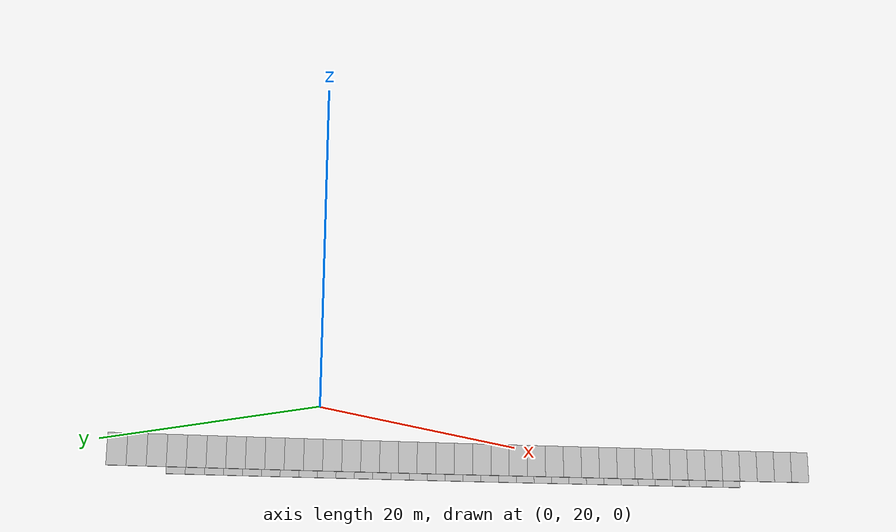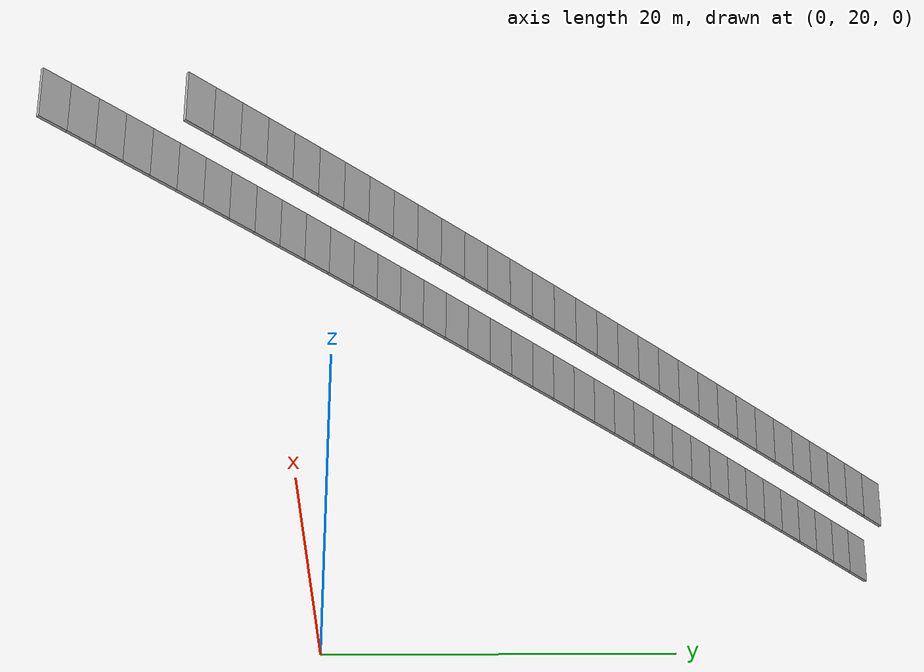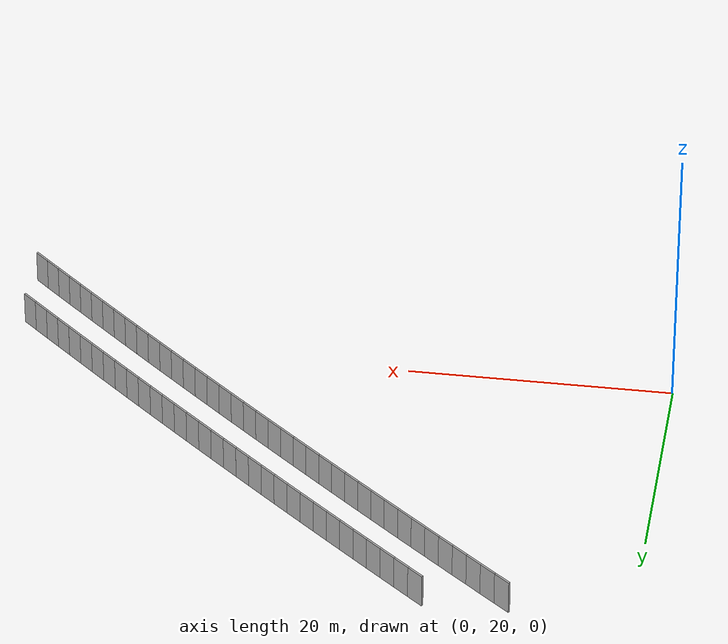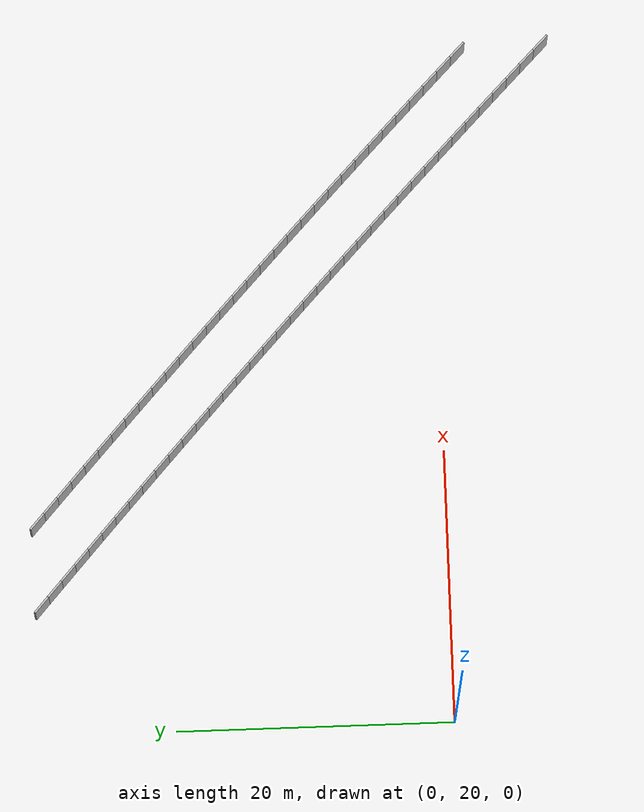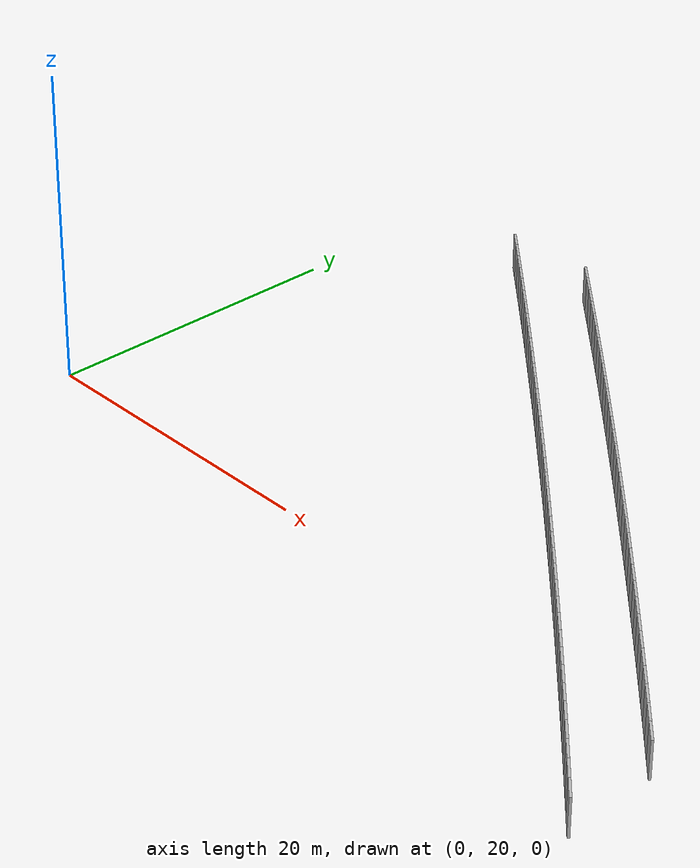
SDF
<?xml version="1.0" ?>
<sdf version="1.6">
  <model name="sps_3941">
    <pose frame="">0 0 0 0 -0 0</pose>
    <static>1</static>
    <self_collide>0</self_collide>
    <allow_auto_disable>0</allow_auto_disable>
    <link name="Wall10425">
      <kinematic>0</kinematic>
      <gravity>1</gravity>
      <self_collide>0</self_collide>
      <collision name="collision">
        <geometry>
          <box>
            <size>1.49648 0.15 2.5</size>
          </box>
        </geometry>
        <pose frame="">0 0 0 0 -0 0</pose>
      </collision>
      <visual name="visual">
        <geometry>
          <box>
            <size>1.49648 0.15 2.5</size>
          </box>
        </geometry>
        <pose frame="">0 0 0 0 -0 0</pose>
        <cast_shadows>1</cast_shadows>
        <transparency>0.0</transparency>
      </visual>
      <pose frame="">49.8541 11.8337 1.25 0 -0 2.36762</pose>
    </link>
    <link name="Wall10426">
      <kinematic>0</kinematic>
      <gravity>1</gravity>
      <self_collide>0</self_collide>
      <collision name="collision">
        <geometry>
          <box>
            <size>1.49639 0.15 2.5</size>
          </box>
        </geometry>
        <pose frame="">0 0 0 0 -0 0</pose>
      </collision>
      <visual name="visual">
        <geometry>
          <box>
            <size>1.49639 0.15 2.5</size>
          </box>
        </geometry>
        <pose frame="">0 0 0 0 -0 0</pose>
        <cast_shadows>1</cast_shadows>
        <transparency>0.0</transparency>
      </visual>
      <pose frame="">48.783 12.8787 1.25 0 -0 2.36943</pose>
    </link>
    <link name="Wall10427">
      <kinematic>0</kinematic>
      <gravity>1</gravity>
      <self_collide>0</self_collide>
      <collision name="collision">
        <geometry>
          <box>
            <size>1.49651 0.15 2.5</size>
          </box>
        </geometry>
        <pose frame="">0 0 0 0 -0 0</pose>
      </collision>
      <visual name="visual">
        <geometry>
          <box>
            <size>1.49651 0.15 2.5</size>
          </box>
        </geometry>
        <pose frame="">0 0 0 0 -0 0</pose>
        <cast_shadows>1</cast_shadows>
        <transparency>0.0</transparency>
      </visual>
      <pose frame="">47.7101 13.9219 1.25 0 -0 2.37105</pose>
    </link>
    <link name="Wall10428">
      <kinematic>0</kinematic>
      <gravity>1</gravity>
      <self_collide>0</self_collide>
      <collision name="collision">
        <geometry>
          <box>
            <size>1.49659 0.15 2.5</size>
          </box>
        </geometry>
        <pose frame="">0 0 0 0 -0 0</pose>
      </collision>
      <visual name="visual">
        <geometry>
          <box>
            <size>1.49659 0.15 2.5</size>
          </box>
        </geometry>
        <pose frame="">0 0 0 0 -0 0</pose>
        <cast_shadows>1</cast_shadows>
        <transparency>0.0</transparency>
      </visual>
      <pose frame="">46.6356 14.9635 1.25 0 -0 2.37252</pose>
    </link>
    <link name="Wall10429">
      <kinematic>0</kinematic>
      <gravity>1</gravity>
      <self_collide>0</self_collide>
      <collision name="collision">
        <geometry>
          <box>
            <size>1.4965 0.15 2.5</size>
          </box>
        </geometry>
        <pose frame="">0 0 0 0 -0 0</pose>
      </collision>
      <visual name="visual">
        <geometry>
          <box>
            <size>1.4965 0.15 2.5</size>
          </box>
        </geometry>
        <pose frame="">0 0 0 0 -0 0</pose>
        <cast_shadows>1</cast_shadows>
        <transparency>0.0</transparency>
      </visual>
      <pose frame="">45.5593 16.0034 1.25 0 -0 2.37416</pose>
    </link>
    <link name="Wall10430">
      <kinematic>0</kinematic>
      <gravity>1</gravity>
      <self_collide>0</self_collide>
      <collision name="collision">
        <geometry>
          <box>
            <size>1.4965 0.15 2.5</size>
          </box>
        </geometry>
        <pose frame="">0 0 0 0 -0 0</pose>
      </collision>
      <visual name="visual">
        <geometry>
          <box>
            <size>1.4965 0.15 2.5</size>
          </box>
        </geometry>
        <pose frame="">0 0 0 0 -0 0</pose>
        <cast_shadows>1</cast_shadows>
        <transparency>0.0</transparency>
      </visual>
      <pose frame="">44.4814 17.0415 1.25 0 -0 2.37586</pose>
    </link>
    <link name="Wall10431">
      <kinematic>0</kinematic>
      <gravity>1</gravity>
      <self_collide>0</self_collide>
      <collision name="collision">
        <geometry>
          <box>
            <size>1.49642 0.15 2.5</size>
          </box>
        </geometry>
        <pose frame="">0 0 0 0 -0 0</pose>
      </collision>
      <visual name="visual">
        <geometry>
          <box>
            <size>1.49642 0.15 2.5</size>
          </box>
        </geometry>
        <pose frame="">0 0 0 0 -0 0</pose>
        <cast_shadows>1</cast_shadows>
        <transparency>0.0</transparency>
      </visual>
      <pose frame="">43.4018 18.0778 1.25 0 -0 2.37745</pose>
    </link>
    <link name="Wall10432">
      <kinematic>0</kinematic>
      <gravity>1</gravity>
      <self_collide>0</self_collide>
      <collision name="collision">
        <geometry>
          <box>
            <size>1.49647 0.15 2.5</size>
          </box>
        </geometry>
        <pose frame="">0 0 0 0 -0 0</pose>
      </collision>
      <visual name="visual">
        <geometry>
          <box>
            <size>1.49647 0.15 2.5</size>
          </box>
        </geometry>
        <pose frame="">0 0 0 0 -0 0</pose>
        <cast_shadows>1</cast_shadows>
        <transparency>0.0</transparency>
      </visual>
      <pose frame="">42.3208 19.1125 1.25 0 -0 2.37878</pose>
    </link>
    <link name="Wall10433">
      <kinematic>0</kinematic>
      <gravity>1</gravity>
      <self_collide>0</self_collide>
      <collision name="collision">
        <geometry>
          <box>
            <size>1.49644 0.15 2.5</size>
          </box>
        </geometry>
        <pose frame="">0 0 0 0 -0 0</pose>
      </collision>
      <visual name="visual">
        <geometry>
          <box>
            <size>1.49644 0.15 2.5</size>
          </box>
        </geometry>
        <pose frame="">0 0 0 0 -0 0</pose>
        <cast_shadows>1</cast_shadows>
        <transparency>0.0</transparency>
      </visual>
      <pose frame="">41.2381 20.1455 1.25 0 -0 2.38057</pose>
    </link>
    <link name="Wall10434">
      <kinematic>0</kinematic>
      <gravity>1</gravity>
      <self_collide>0</self_collide>
      <collision name="collision">
        <geometry>
          <box>
            <size>1.49672 0.15 2.5</size>
          </box>
        </geometry>
        <pose frame="">0 0 0 0 -0 0</pose>
      </collision>
      <visual name="visual">
        <geometry>
          <box>
            <size>1.49672 0.15 2.5</size>
          </box>
        </geometry>
        <pose frame="">0 0 0 0 -0 0</pose>
        <cast_shadows>1</cast_shadows>
        <transparency>0.0</transparency>
      </visual>
      <pose frame="">40.1536 21.1768 1.25 0 -0 2.38209</pose>
    </link>
    <link name="Wall10435">
      <kinematic>0</kinematic>
      <gravity>1</gravity>
      <self_collide>0</self_collide>
      <collision name="collision">
        <geometry>
          <box>
            <size>1.49652 0.15 2.5</size>
          </box>
        </geometry>
        <pose frame="">0 0 0 0 -0 0</pose>
      </collision>
      <visual name="visual">
        <geometry>
          <box>
            <size>1.49652 0.15 2.5</size>
          </box>
        </geometry>
        <pose frame="">0 0 0 0 -0 0</pose>
        <cast_shadows>1</cast_shadows>
        <transparency>0.0</transparency>
      </visual>
      <pose frame="">39.0675 22.2065 1.25 0 -0 2.3836</pose>
    </link>
    <link name="Wall10436">
      <kinematic>0</kinematic>
      <gravity>1</gravity>
      <self_collide>0</self_collide>
      <collision name="collision">
        <geometry>
          <box>
            <size>1.49659 0.15 2.5</size>
          </box>
        </geometry>
        <pose frame="">0 0 0 0 -0 0</pose>
      </collision>
      <visual name="visual">
        <geometry>
          <box>
            <size>1.49659 0.15 2.5</size>
          </box>
        </geometry>
        <pose frame="">0 0 0 0 -0 0</pose>
        <cast_shadows>1</cast_shadows>
        <transparency>0.0</transparency>
      </visual>
      <pose frame="">37.9798 23.2344 1.25 0 -0 2.38532</pose>
    </link>
    <link name="Wall10437">
      <kinematic>0</kinematic>
      <gravity>1</gravity>
      <self_collide>0</self_collide>
      <collision name="collision">
        <geometry>
          <box>
            <size>1.49653 0.15 2.5</size>
          </box>
        </geometry>
        <pose frame="">0 0 0 0 -0 0</pose>
      </collision>
      <visual name="visual">
        <geometry>
          <box>
            <size>1.49653 0.15 2.5</size>
          </box>
        </geometry>
        <pose frame="">0 0 0 0 -0 0</pose>
        <cast_shadows>1</cast_shadows>
        <transparency>0.0</transparency>
      </visual>
      <pose frame="">36.8903 24.2605 1.25 0 -0 2.38691</pose>
    </link>
    <link name="Wall10438">
      <kinematic>0</kinematic>
      <gravity>1</gravity>
      <self_collide>0</self_collide>
      <collision name="collision">
        <geometry>
          <box>
            <size>1.49642 0.15 2.5</size>
          </box>
        </geometry>
        <pose frame="">0 0 0 0 -0 0</pose>
      </collision>
      <visual name="visual">
        <geometry>
          <box>
            <size>1.49642 0.15 2.5</size>
          </box>
        </geometry>
        <pose frame="">0 0 0 0 -0 0</pose>
        <cast_shadows>1</cast_shadows>
        <transparency>0.0</transparency>
      </visual>
      <pose frame="">35.7995 25.2849 1.25 0 -0 2.3883</pose>
    </link>
    <link name="Wall10439">
      <kinematic>0</kinematic>
      <gravity>1</gravity>
      <self_collide>0</self_collide>
      <collision name="collision">
        <geometry>
          <box>
            <size>1.49655 0.15 2.5</size>
          </box>
        </geometry>
        <pose frame="">0 0 0 0 -0 0</pose>
      </collision>
      <visual name="visual">
        <geometry>
          <box>
            <size>1.49655 0.15 2.5</size>
          </box>
        </geometry>
        <pose frame="">0 0 0 0 -0 0</pose>
        <cast_shadows>1</cast_shadows>
        <transparency>0.0</transparency>
      </visual>
      <pose frame="">34.707 26.3076 1.25 0 -0 2.39006</pose>
    </link>
    <link name="Wall10440">
      <kinematic>0</kinematic>
      <gravity>1</gravity>
      <self_collide>0</self_collide>
      <collision name="collision">
        <geometry>
          <box>
            <size>1.49646 0.15 2.5</size>
          </box>
        </geometry>
        <pose frame="">0 0 0 0 -0 0</pose>
      </collision>
      <visual name="visual">
        <geometry>
          <box>
            <size>1.49646 0.15 2.5</size>
          </box>
        </geometry>
        <pose frame="">0 0 0 0 -0 0</pose>
        <cast_shadows>1</cast_shadows>
        <transparency>0.0</transparency>
      </visual>
      <pose frame="">33.6128 27.3285 1.25 0 -0 2.39162</pose>
    </link>
    <link name="Wall10441">
      <kinematic>0</kinematic>
      <gravity>1</gravity>
      <self_collide>0</self_collide>
      <collision name="collision">
        <geometry>
          <box>
            <size>1.49655 0.15 2.5</size>
          </box>
        </geometry>
        <pose frame="">0 0 0 0 -0 0</pose>
      </collision>
      <visual name="visual">
        <geometry>
          <box>
            <size>1.49655 0.15 2.5</size>
          </box>
        </geometry>
        <pose frame="">0 0 0 0 -0 0</pose>
        <cast_shadows>1</cast_shadows>
        <transparency>0.0</transparency>
      </visual>
      <pose frame="">32.517 28.3477 1.25 0 -0 2.39317</pose>
    </link>
    <link name="Wall10442">
      <kinematic>0</kinematic>
      <gravity>1</gravity>
      <self_collide>0</self_collide>
      <collision name="collision">
        <geometry>
          <box>
            <size>1.49651 0.15 2.5</size>
          </box>
        </geometry>
        <pose frame="">0 0 0 0 -0 0</pose>
      </collision>
      <visual name="visual">
        <geometry>
          <box>
            <size>1.49651 0.15 2.5</size>
          </box>
        </geometry>
        <pose frame="">0 0 0 0 -0 0</pose>
        <cast_shadows>1</cast_shadows>
        <transparency>0.0</transparency>
      </visual>
      <pose frame="">31.4195 29.3652 1.25 0 -0 2.39476</pose>
    </link>
    <link name="Wall10443">
      <kinematic>0</kinematic>
      <gravity>1</gravity>
      <self_collide>0</self_collide>
      <collision name="collision">
        <geometry>
          <box>
            <size>1.49647 0.15 2.5</size>
          </box>
        </geometry>
        <pose frame="">0 0 0 0 -0 0</pose>
      </collision>
      <visual name="visual">
        <geometry>
          <box>
            <size>1.49647 0.15 2.5</size>
          </box>
        </geometry>
        <pose frame="">0 0 0 0 -0 0</pose>
        <cast_shadows>1</cast_shadows>
        <transparency>0.0</transparency>
      </visual>
      <pose frame="">30.3205 30.3809 1.25 0 -0 2.39635</pose>
    </link>
    <link name="Wall10444">
      <kinematic>0</kinematic>
      <gravity>1</gravity>
      <self_collide>0</self_collide>
      <collision name="collision">
        <geometry>
          <box>
            <size>1.49652 0.15 2.5</size>
          </box>
        </geometry>
        <pose frame="">0 0 0 0 -0 0</pose>
      </collision>
      <visual name="visual">
        <geometry>
          <box>
            <size>1.49652 0.15 2.5</size>
          </box>
        </geometry>
        <pose frame="">0 0 0 0 -0 0</pose>
        <cast_shadows>1</cast_shadows>
        <transparency>0.0</transparency>
      </visual>
      <pose frame="">29.22 31.3949 1.25 0 -0 2.39788</pose>
    </link>
    <link name="Wall10445">
      <kinematic>0</kinematic>
      <gravity>1</gravity>
      <self_collide>0</self_collide>
      <collision name="collision">
        <geometry>
          <box>
            <size>1.49654 0.15 2.5</size>
          </box>
        </geometry>
        <pose frame="">0 0 0 0 -0 0</pose>
      </collision>
      <visual name="visual">
        <geometry>
          <box>
            <size>1.49654 0.15 2.5</size>
          </box>
        </geometry>
        <pose frame="">0 0 0 0 -0 0</pose>
        <cast_shadows>1</cast_shadows>
        <transparency>0.0</transparency>
      </visual>
      <pose frame="">28.1178 32.4072 1.25 0 -0 2.3995</pose>
    </link>
    <link name="Wall10446">
      <kinematic>0</kinematic>
      <gravity>1</gravity>
      <self_collide>0</self_collide>
      <collision name="collision">
        <geometry>
          <box>
            <size>1.49672 0.15 2.5</size>
          </box>
        </geometry>
        <pose frame="">0 0 0 0 -0 0</pose>
      </collision>
      <visual name="visual">
        <geometry>
          <box>
            <size>1.49672 0.15 2.5</size>
          </box>
        </geometry>
        <pose frame="">0 0 0 0 -0 0</pose>
        <cast_shadows>1</cast_shadows>
        <transparency>0.0</transparency>
      </visual>
      <pose frame="">27.0139 33.4179 1.25 0 -0 2.40093</pose>
    </link>
    <link name="Wall10447">
      <kinematic>0</kinematic>
      <gravity>1</gravity>
      <self_collide>0</self_collide>
      <collision name="collision">
        <geometry>
          <box>
            <size>1.49645 0.15 2.5</size>
          </box>
        </geometry>
        <pose frame="">0 0 0 0 -0 0</pose>
      </collision>
      <visual name="visual">
        <geometry>
          <box>
            <size>1.49645 0.15 2.5</size>
          </box>
        </geometry>
        <pose frame="">0 0 0 0 -0 0</pose>
        <cast_shadows>1</cast_shadows>
        <transparency>0.0</transparency>
      </visual>
      <pose frame="">25.9085 34.4268 1.25 0 -0 2.4027</pose>
    </link>
    <link name="Wall10448">
      <kinematic>0</kinematic>
      <gravity>1</gravity>
      <self_collide>0</self_collide>
      <collision name="collision">
        <geometry>
          <box>
            <size>1.49643 0.15 2.5</size>
          </box>
        </geometry>
        <pose frame="">0 0 0 0 -0 0</pose>
      </collision>
      <visual name="visual">
        <geometry>
          <box>
            <size>1.49643 0.15 2.5</size>
          </box>
        </geometry>
        <pose frame="">0 0 0 0 -0 0</pose>
        <cast_shadows>1</cast_shadows>
        <transparency>0.0</transparency>
      </visual>
      <pose frame="">24.8015 35.4337 1.25 0 -0 2.40429</pose>
    </link>
    <link name="Wall10449">
      <kinematic>0</kinematic>
      <gravity>1</gravity>
      <self_collide>0</self_collide>
      <collision name="collision">
        <geometry>
          <box>
            <size>1.4965 0.15 2.5</size>
          </box>
        </geometry>
        <pose frame="">0 0 0 0 -0 0</pose>
      </collision>
      <visual name="visual">
        <geometry>
          <box>
            <size>1.4965 0.15 2.5</size>
          </box>
        </geometry>
        <pose frame="">0 0 0 0 -0 0</pose>
        <cast_shadows>1</cast_shadows>
        <transparency>0.0</transparency>
      </visual>
      <pose frame="">23.693 36.4389 1.25 0 -0 2.40582</pose>
    </link>
    <link name="Wall10450">
      <kinematic>0</kinematic>
      <gravity>1</gravity>
      <self_collide>0</self_collide>
      <collision name="collision">
        <geometry>
          <box>
            <size>1.4965 0.15 2.5</size>
          </box>
        </geometry>
        <pose frame="">0 0 0 0 -0 0</pose>
      </collision>
      <visual name="visual">
        <geometry>
          <box>
            <size>1.4965 0.15 2.5</size>
          </box>
        </geometry>
        <pose frame="">0 0 0 0 -0 0</pose>
        <cast_shadows>1</cast_shadows>
        <transparency>0.0</transparency>
      </visual>
      <pose frame="">22.5828 37.4424 1.25 0 -0 2.40746</pose>
    </link>
    <link name="Wall10451">
      <kinematic>0</kinematic>
      <gravity>1</gravity>
      <self_collide>0</self_collide>
      <collision name="collision">
        <geometry>
          <box>
            <size>1.49666 0.15 2.5</size>
          </box>
        </geometry>
        <pose frame="">0 0 0 0 -0 0</pose>
      </collision>
      <visual name="visual">
        <geometry>
          <box>
            <size>1.49666 0.15 2.5</size>
          </box>
        </geometry>
        <pose frame="">0 0 0 0 -0 0</pose>
        <cast_shadows>1</cast_shadows>
        <transparency>0.0</transparency>
      </visual>
      <pose frame="">21.4709 38.4442 1.25 0 -0 2.40893</pose>
    </link>
    <link name="Wall10452">
      <kinematic>0</kinematic>
      <gravity>1</gravity>
      <self_collide>0</self_collide>
      <collision name="collision">
        <geometry>
          <box>
            <size>1.49645 0.15 2.5</size>
          </box>
        </geometry>
        <pose frame="">0 0 0 0 -0 0</pose>
      </collision>
      <visual name="visual">
        <geometry>
          <box>
            <size>1.49645 0.15 2.5</size>
          </box>
        </geometry>
        <pose frame="">0 0 0 0 -0 0</pose>
        <cast_shadows>1</cast_shadows>
        <transparency>0.0</transparency>
      </visual>
      <pose frame="">20.3575 39.4442 1.25 0 -0 2.41067</pose>
    </link>
    <link name="Wall10453">
      <kinematic>0</kinematic>
      <gravity>1</gravity>
      <self_collide>0</self_collide>
      <collision name="collision">
        <geometry>
          <box>
            <size>1.49661 0.15 2.5</size>
          </box>
        </geometry>
        <pose frame="">0 0 0 0 -0 0</pose>
      </collision>
      <visual name="visual">
        <geometry>
          <box>
            <size>1.49661 0.15 2.5</size>
          </box>
        </geometry>
        <pose frame="">0 0 0 0 -0 0</pose>
        <cast_shadows>1</cast_shadows>
        <transparency>0.0</transparency>
      </visual>
      <pose frame="">19.2425 40.4424 1.25 0 -0 2.41214</pose>
    </link>
    <link name="Wall10454">
      <kinematic>0</kinematic>
      <gravity>1</gravity>
      <self_collide>0</self_collide>
      <collision name="collision">
        <geometry>
          <box>
            <size>1.49642 0.15 2.5</size>
          </box>
        </geometry>
        <pose frame="">0 0 0 0 -0 0</pose>
      </collision>
      <visual name="visual">
        <geometry>
          <box>
            <size>1.49642 0.15 2.5</size>
          </box>
        </geometry>
        <pose frame="">0 0 0 0 -0 0</pose>
        <cast_shadows>1</cast_shadows>
        <transparency>0.0</transparency>
      </visual>
      <pose frame="">18.126 41.4388 1.25 0 -0 2.41388</pose>
    </link>
    <link name="Wall10455">
      <kinematic>0</kinematic>
      <gravity>1</gravity>
      <self_collide>0</self_collide>
      <collision name="collision">
        <geometry>
          <box>
            <size>1.4965 0.15 2.5</size>
          </box>
        </geometry>
        <pose frame="">0 0 0 0 -0 0</pose>
      </collision>
      <visual name="visual">
        <geometry>
          <box>
            <size>1.4965 0.15 2.5</size>
          </box>
        </geometry>
        <pose frame="">0 0 0 0 -0 0</pose>
        <cast_shadows>1</cast_shadows>
        <transparency>0.0</transparency>
      </visual>
      <pose frame="">17.0079 42.4334 1.25 0 -0 2.41529</pose>
    </link>
    <link name="Wall10456">
      <kinematic>0</kinematic>
      <gravity>1</gravity>
      <self_collide>0</self_collide>
      <collision name="collision">
        <geometry>
          <box>
            <size>1.49661 0.15 2.5</size>
          </box>
        </geometry>
        <pose frame="">0 0 0 0 -0 0</pose>
      </collision>
      <visual name="visual">
        <geometry>
          <box>
            <size>1.49661 0.15 2.5</size>
          </box>
        </geometry>
        <pose frame="">0 0 0 0 -0 0</pose>
        <cast_shadows>1</cast_shadows>
        <transparency>0.0</transparency>
      </visual>
      <pose frame="">15.8881 43.4263 1.25 0 -0 2.41699</pose>
    </link>
    <link name="Wall10457">
      <kinematic>0</kinematic>
      <gravity>1</gravity>
      <self_collide>0</self_collide>
      <collision name="collision">
        <geometry>
          <box>
            <size>1.49645 0.15 2.5</size>
          </box>
        </geometry>
        <pose frame="">0 0 0 0 -0 0</pose>
      </collision>
      <visual name="visual">
        <geometry>
          <box>
            <size>1.49645 0.15 2.5</size>
          </box>
        </geometry>
        <pose frame="">0 0 0 0 -0 0</pose>
        <cast_shadows>1</cast_shadows>
        <transparency>0.0</transparency>
      </visual>
      <pose frame="">14.7668 44.4174 1.25 0 -0 2.41853</pose>
    </link>
    <link name="Wall10458">
      <kinematic>0</kinematic>
      <gravity>1</gravity>
      <self_collide>0</self_collide>
      <collision name="collision">
        <geometry>
          <box>
            <size>1.49647 0.15 2.5</size>
          </box>
        </geometry>
        <pose frame="">0 0 0 0 -0 0</pose>
      </collision>
      <visual name="visual">
        <geometry>
          <box>
            <size>1.49647 0.15 2.5</size>
          </box>
        </geometry>
        <pose frame="">0 0 0 0 -0 0</pose>
        <cast_shadows>1</cast_shadows>
        <transparency>0.0</transparency>
      </visual>
      <pose frame="">13.644 45.4067 1.25 0 -0 2.42012</pose>
    </link>
    <link name="Wall10459">
      <kinematic>0</kinematic>
      <gravity>1</gravity>
      <self_collide>0</self_collide>
      <collision name="collision">
        <geometry>
          <box>
            <size>1.49645 0.15 2.5</size>
          </box>
        </geometry>
        <pose frame="">0 0 0 0 -0 0</pose>
      </collision>
      <visual name="visual">
        <geometry>
          <box>
            <size>1.49645 0.15 2.5</size>
          </box>
        </geometry>
        <pose frame="">0 0 0 0 -0 0</pose>
        <cast_shadows>1</cast_shadows>
        <transparency>0.0</transparency>
      </visual>
      <pose frame="">12.5196 46.3942 1.25 0 -0 2.42174</pose>
    </link>
    <link name="Wall10460">
      <kinematic>0</kinematic>
      <gravity>1</gravity>
      <self_collide>0</self_collide>
      <collision name="collision">
        <geometry>
          <box>
            <size>1.49648 0.15 2.5</size>
          </box>
        </geometry>
        <pose frame="">0 0 0 0 -0 0</pose>
      </collision>
      <visual name="visual">
        <geometry>
          <box>
            <size>1.49648 0.15 2.5</size>
          </box>
        </geometry>
        <pose frame="">0 0 0 0 -0 0</pose>
        <cast_shadows>1</cast_shadows>
        <transparency>0.0</transparency>
      </visual>
      <pose frame="">11.3937 47.3799 1.25 0 -0 2.42333</pose>
    </link>
    <link name="Wall10461">
      <kinematic>0</kinematic>
      <gravity>1</gravity>
      <self_collide>0</self_collide>
      <collision name="collision">
        <geometry>
          <box>
            <size>1.49654 0.15 2.5</size>
          </box>
        </geometry>
        <pose frame="">0 0 0 0 -0 0</pose>
      </collision>
      <visual name="visual">
        <geometry>
          <box>
            <size>1.49654 0.15 2.5</size>
          </box>
        </geometry>
        <pose frame="">0 0 0 0 -0 0</pose>
        <cast_shadows>1</cast_shadows>
        <transparency>0.0</transparency>
      </visual>
      <pose frame="">10.2662 48.3639 1.25 0 -0 2.42477</pose>
    </link>
    <link name="Wall10462">
      <kinematic>0</kinematic>
      <gravity>1</gravity>
      <self_collide>0</self_collide>
      <collision name="collision">
        <geometry>
          <box>
            <size>1.49667 0.15 2.5</size>
          </box>
        </geometry>
        <pose frame="">0 0 0 0 -0 0</pose>
      </collision>
      <visual name="visual">
        <geometry>
          <box>
            <size>1.49667 0.15 2.5</size>
          </box>
        </geometry>
        <pose frame="">0 0 0 0 -0 0</pose>
        <cast_shadows>1</cast_shadows>
        <transparency>0.0</transparency>
      </visual>
      <pose frame="">9.13705 49.3462 1.25 0 -0 2.42647</pose>
    </link>
    <link name="Wall11025">
      <kinematic>0</kinematic>
      <gravity>1</gravity>
      <self_collide>0</self_collide>
      <collision name="collision">
        <geometry>
          <box>
            <size>1.50323 0.15 2.5</size>
          </box>
        </geometry>
        <pose frame="">0 0 0 0 -0 0</pose>
      </collision>
      <visual name="visual">
        <geometry>
          <box>
            <size>1.50323 0.15 2.5</size>
          </box>
        </geometry>
        <pose frame="">0 0 0 0 -0 0</pose>
        <cast_shadows>1</cast_shadows>
        <transparency>0.0</transparency>
      </visual>
      <pose frame="">49.5143 17.9387 1.25 0 -0 2.37239</pose>
    </link>
    <link name="Wall11026">
      <kinematic>0</kinematic>
      <gravity>1</gravity>
      <self_collide>0</self_collide>
      <collision name="collision">
        <geometry>
          <box>
            <size>1.50298 0.15 2.5</size>
          </box>
        </geometry>
        <pose frame="">0 0 0 0 -0 0</pose>
      </collision>
      <visual name="visual">
        <geometry>
          <box>
            <size>1.50298 0.15 2.5</size>
          </box>
        </geometry>
        <pose frame="">0 0 0 0 -0 0</pose>
        <cast_shadows>1</cast_shadows>
        <transparency>0.0</transparency>
      </visual>
      <pose frame="">48.4334 18.9832 1.25 0 -0 2.37426</pose>
    </link>
    <link name="Wall11027">
      <kinematic>0</kinematic>
      <gravity>1</gravity>
      <self_collide>0</self_collide>
      <collision name="collision">
        <geometry>
          <box>
            <size>1.50306 0.15 2.5</size>
          </box>
        </geometry>
        <pose frame="">0 0 0 0 -0 0</pose>
      </collision>
      <visual name="visual">
        <geometry>
          <box>
            <size>1.50306 0.15 2.5</size>
          </box>
        </geometry>
        <pose frame="">0 0 0 0 -0 0</pose>
        <cast_shadows>1</cast_shadows>
        <transparency>0.0</transparency>
      </visual>
      <pose frame="">47.3508 20.0258 1.25 0 -0 2.37578</pose>
    </link>
    <link name="Wall11028">
      <kinematic>0</kinematic>
      <gravity>1</gravity>
      <self_collide>0</self_collide>
      <collision name="collision">
        <geometry>
          <box>
            <size>1.5032 0.15 2.5</size>
          </box>
        </geometry>
        <pose frame="">0 0 0 0 -0 0</pose>
      </collision>
      <visual name="visual">
        <geometry>
          <box>
            <size>1.5032 0.15 2.5</size>
          </box>
        </geometry>
        <pose frame="">0 0 0 0 -0 0</pose>
        <cast_shadows>1</cast_shadows>
        <transparency>0.0</transparency>
      </visual>
      <pose frame="">46.2664 21.0668 1.25 0 -0 2.37738</pose>
    </link>
    <link name="Wall11029">
      <kinematic>0</kinematic>
      <gravity>1</gravity>
      <self_collide>0</self_collide>
      <collision name="collision">
        <geometry>
          <box>
            <size>1.50303 0.15 2.5</size>
          </box>
        </geometry>
        <pose frame="">0 0 0 0 -0 0</pose>
      </collision>
      <visual name="visual">
        <geometry>
          <box>
            <size>1.50303 0.15 2.5</size>
          </box>
        </geometry>
        <pose frame="">0 0 0 0 -0 0</pose>
        <cast_shadows>1</cast_shadows>
        <transparency>0.0</transparency>
      </visual>
      <pose frame="">45.1805 22.1061 1.25 0 -0 2.37885</pose>
    </link>
    <link name="Wall11030">
      <kinematic>0</kinematic>
      <gravity>1</gravity>
      <self_collide>0</self_collide>
      <collision name="collision">
        <geometry>
          <box>
            <size>1.50301 0.15 2.5</size>
          </box>
        </geometry>
        <pose frame="">0 0 0 0 -0 0</pose>
      </collision>
      <visual name="visual">
        <geometry>
          <box>
            <size>1.50301 0.15 2.5</size>
          </box>
        </geometry>
        <pose frame="">0 0 0 0 -0 0</pose>
        <cast_shadows>1</cast_shadows>
        <transparency>0.0</transparency>
      </visual>
      <pose frame="">44.093 23.1436 1.25 0 -0 2.38058</pose>
    </link>
    <link name="Wall11031">
      <kinematic>0</kinematic>
      <gravity>1</gravity>
      <self_collide>0</self_collide>
      <collision name="collision">
        <geometry>
          <box>
            <size>1.5031 0.15 2.5</size>
          </box>
        </geometry>
        <pose frame="">0 0 0 0 -0 0</pose>
      </collision>
      <visual name="visual">
        <geometry>
          <box>
            <size>1.5031 0.15 2.5</size>
          </box>
        </geometry>
        <pose frame="">0 0 0 0 -0 0</pose>
        <cast_shadows>1</cast_shadows>
        <transparency>0.0</transparency>
      </visual>
      <pose frame="">43.0039 24.1794 1.25 0 -0 2.38204</pose>
    </link>
    <link name="Wall11032">
      <kinematic>0</kinematic>
      <gravity>1</gravity>
      <self_collide>0</self_collide>
      <collision name="collision">
        <geometry>
          <box>
            <size>1.50304 0.15 2.5</size>
          </box>
        </geometry>
        <pose frame="">0 0 0 0 -0 0</pose>
      </collision>
      <visual name="visual">
        <geometry>
          <box>
            <size>1.50304 0.15 2.5</size>
          </box>
        </geometry>
        <pose frame="">0 0 0 0 -0 0</pose>
        <cast_shadows>1</cast_shadows>
        <transparency>0.0</transparency>
      </visual>
      <pose frame="">41.9131 25.2135 1.25 0 -0 2.38368</pose>
    </link>
    <link name="Wall11033">
      <kinematic>0</kinematic>
      <gravity>1</gravity>
      <self_collide>0</self_collide>
      <collision name="collision">
        <geometry>
          <box>
            <size>1.50306 0.15 2.5</size>
          </box>
        </geometry>
        <pose frame="">0 0 0 0 -0 0</pose>
      </collision>
      <visual name="visual">
        <geometry>
          <box>
            <size>1.50306 0.15 2.5</size>
          </box>
        </geometry>
        <pose frame="">0 0 0 0 -0 0</pose>
        <cast_shadows>1</cast_shadows>
        <transparency>0.0</transparency>
      </visual>
      <pose frame="">40.8207 26.2459 1.25 0 -0 2.3852</pose>
    </link>
    <link name="Wall11034">
      <kinematic>0</kinematic>
      <gravity>1</gravity>
      <self_collide>0</self_collide>
      <collision name="collision">
        <geometry>
          <box>
            <size>1.50306 0.15 2.5</size>
          </box>
        </geometry>
        <pose frame="">0 0 0 0 -0 0</pose>
      </collision>
      <visual name="visual">
        <geometry>
          <box>
            <size>1.50306 0.15 2.5</size>
          </box>
        </geometry>
        <pose frame="">0 0 0 0 -0 0</pose>
        <cast_shadows>1</cast_shadows>
        <transparency>0.0</transparency>
      </visual>
      <pose frame="">39.7266 27.2765 1.25 0 -0 2.38698</pose>
    </link>
    <link name="Wall11035">
      <kinematic>0</kinematic>
      <gravity>1</gravity>
      <self_collide>0</self_collide>
      <collision name="collision">
        <geometry>
          <box>
            <size>1.50321 0.15 2.5</size>
          </box>
        </geometry>
        <pose frame="">0 0 0 0 -0 0</pose>
      </collision>
      <visual name="visual">
        <geometry>
          <box>
            <size>1.50321 0.15 2.5</size>
          </box>
        </geometry>
        <pose frame="">0 0 0 0 -0 0</pose>
        <cast_shadows>1</cast_shadows>
        <transparency>0.0</transparency>
      </visual>
      <pose frame="">38.6308 28.3054 1.25 0 -0 2.38836</pose>
    </link>
    <link name="Wall11036">
      <kinematic>0</kinematic>
      <gravity>1</gravity>
      <self_collide>0</self_collide>
      <collision name="collision">
        <geometry>
          <box>
            <size>1.50308 0.15 2.5</size>
          </box>
        </geometry>
        <pose frame="">0 0 0 0 -0 0</pose>
      </collision>
      <visual name="visual">
        <geometry>
          <box>
            <size>1.50308 0.15 2.5</size>
          </box>
        </geometry>
        <pose frame="">0 0 0 0 -0 0</pose>
        <cast_shadows>1</cast_shadows>
        <transparency>0.0</transparency>
      </visual>
      <pose frame="">37.5334 29.3326 1.25 0 -0 2.39005</pose>
    </link>
    <link name="Wall11037">
      <kinematic>0</kinematic>
      <gravity>1</gravity>
      <self_collide>0</self_collide>
      <collision name="collision">
        <geometry>
          <box>
            <size>1.50311 0.15 2.5</size>
          </box>
        </geometry>
        <pose frame="">0 0 0 0 -0 0</pose>
      </collision>
      <visual name="visual">
        <geometry>
          <box>
            <size>1.50311 0.15 2.5</size>
          </box>
        </geometry>
        <pose frame="">0 0 0 0 -0 0</pose>
        <cast_shadows>1</cast_shadows>
        <transparency>0.0</transparency>
      </visual>
      <pose frame="">36.4344 30.358 1.25 0 -0 2.39158</pose>
    </link>
    <link name="Wall11038">
      <kinematic>0</kinematic>
      <gravity>1</gravity>
      <self_collide>0</self_collide>
      <collision name="collision">
        <geometry>
          <box>
            <size>1.50307 0.15 2.5</size>
          </box>
        </geometry>
        <pose frame="">0 0 0 0 -0 0</pose>
      </collision>
      <visual name="visual">
        <geometry>
          <box>
            <size>1.50307 0.15 2.5</size>
          </box>
        </geometry>
        <pose frame="">0 0 0 0 -0 0</pose>
        <cast_shadows>1</cast_shadows>
        <transparency>0.0</transparency>
      </visual>
      <pose frame="">35.3338 31.3817 1.25 0 -0 2.39321</pose>
    </link>
    <link name="Wall11039">
      <kinematic>0</kinematic>
      <gravity>1</gravity>
      <self_collide>0</self_collide>
      <collision name="collision">
        <geometry>
          <box>
            <size>1.50285 0.15 2.5</size>
          </box>
        </geometry>
        <pose frame="">0 0 0 0 -0 0</pose>
      </collision>
      <visual name="visual">
        <geometry>
          <box>
            <size>1.50285 0.15 2.5</size>
          </box>
        </geometry>
        <pose frame="">0 0 0 0 -0 0</pose>
        <cast_shadows>1</cast_shadows>
        <transparency>0.0</transparency>
      </visual>
      <pose frame="">34.2317 32.4036 1.25 0 -0 2.39469</pose>
    </link>
    <link name="Wall11040">
      <kinematic>0</kinematic>
      <gravity>1</gravity>
      <self_collide>0</self_collide>
      <collision name="collision">
        <geometry>
          <box>
            <size>1.50312 0.15 2.5</size>
          </box>
        </geometry>
        <pose frame="">0 0 0 0 -0 0</pose>
      </collision>
      <visual name="visual">
        <geometry>
          <box>
            <size>1.50312 0.15 2.5</size>
          </box>
        </geometry>
        <pose frame="">0 0 0 0 -0 0</pose>
        <cast_shadows>1</cast_shadows>
        <transparency>0.0</transparency>
      </visual>
      <pose frame="">33.128 33.4238 1.25 0 -0 2.39629</pose>
    </link>
    <link name="Wall11041">
      <kinematic>0</kinematic>
      <gravity>1</gravity>
      <self_collide>0</self_collide>
      <collision name="collision">
        <geometry>
          <box>
            <size>1.50318 0.15 2.5</size>
          </box>
        </geometry>
        <pose frame="">0 0 0 0 -0 0</pose>
      </collision>
      <visual name="visual">
        <geometry>
          <box>
            <size>1.50318 0.15 2.5</size>
          </box>
        </geometry>
        <pose frame="">0 0 0 0 -0 0</pose>
        <cast_shadows>1</cast_shadows>
        <transparency>0.0</transparency>
      </visual>
      <pose frame="">32.0225 34.4423 1.25 0 -0 2.39798</pose>
    </link>
    <link name="Wall11042">
      <kinematic>0</kinematic>
      <gravity>1</gravity>
      <self_collide>0</self_collide>
      <collision name="collision">
        <geometry>
          <box>
            <size>1.50302 0.15 2.5</size>
          </box>
        </geometry>
        <pose frame="">0 0 0 0 -0 0</pose>
      </collision>
      <visual name="visual">
        <geometry>
          <box>
            <size>1.50302 0.15 2.5</size>
          </box>
        </geometry>
        <pose frame="">0 0 0 0 -0 0</pose>
        <cast_shadows>1</cast_shadows>
        <transparency>0.0</transparency>
      </visual>
      <pose frame="">30.9154 35.459 1.25 0 -0 2.39948</pose>
    </link>
    <link name="Wall11043">
      <kinematic>0</kinematic>
      <gravity>1</gravity>
      <self_collide>0</self_collide>
      <collision name="collision">
        <geometry>
          <box>
            <size>1.50316 0.15 2.5</size>
          </box>
        </geometry>
        <pose frame="">0 0 0 0 -0 0</pose>
      </collision>
      <visual name="visual">
        <geometry>
          <box>
            <size>1.50316 0.15 2.5</size>
          </box>
        </geometry>
        <pose frame="">0 0 0 0 -0 0</pose>
        <cast_shadows>1</cast_shadows>
        <transparency>0.0</transparency>
      </visual>
      <pose frame="">29.8068 36.474 1.25 0 -0 2.401</pose>
    </link>
    <link name="Wall11044">
      <kinematic>0</kinematic>
      <gravity>1</gravity>
      <self_collide>0</self_collide>
      <collision name="collision">
        <geometry>
          <box>
            <size>1.50311 0.15 2.5</size>
          </box>
        </geometry>
        <pose frame="">0 0 0 0 -0 0</pose>
      </collision>
      <visual name="visual">
        <geometry>
          <box>
            <size>1.50311 0.15 2.5</size>
          </box>
        </geometry>
        <pose frame="">0 0 0 0 -0 0</pose>
        <cast_shadows>1</cast_shadows>
        <transparency>0.0</transparency>
      </visual>
      <pose frame="">28.6964 37.4872 1.25 0 -0 2.40278</pose>
    </link>
    <link name="Wall11045">
      <kinematic>0</kinematic>
      <gravity>1</gravity>
      <self_collide>0</self_collide>
      <collision name="collision">
        <geometry>
          <box>
            <size>1.50302 0.15 2.5</size>
          </box>
        </geometry>
        <pose frame="">0 0 0 0 -0 0</pose>
      </collision>
      <visual name="visual">
        <geometry>
          <box>
            <size>1.50302 0.15 2.5</size>
          </box>
        </geometry>
        <pose frame="">0 0 0 0 -0 0</pose>
        <cast_shadows>1</cast_shadows>
        <transparency>0.0</transparency>
      </visual>
      <pose frame="">27.5846 38.4987 1.25 0 -0 2.40399</pose>
    </link>
    <link name="Wall11046">
      <kinematic>0</kinematic>
      <gravity>1</gravity>
      <self_collide>0</self_collide>
      <collision name="collision">
        <geometry>
          <box>
            <size>1.50316 0.15 2.5</size>
          </box>
        </geometry>
        <pose frame="">0 0 0 0 -0 0</pose>
      </collision>
      <visual name="visual">
        <geometry>
          <box>
            <size>1.50316 0.15 2.5</size>
          </box>
        </geometry>
        <pose frame="">0 0 0 0 -0 0</pose>
        <cast_shadows>1</cast_shadows>
        <transparency>0.0</transparency>
      </visual>
      <pose frame="">26.4713 39.5085 1.25 0 -0 2.40589</pose>
    </link>
    <link name="Wall11047">
      <kinematic>0</kinematic>
      <gravity>1</gravity>
      <self_collide>0</self_collide>
      <collision name="collision">
        <geometry>
          <box>
            <size>1.50306 0.15 2.5</size>
          </box>
        </geometry>
        <pose frame="">0 0 0 0 -0 0</pose>
      </collision>
      <visual name="visual">
        <geometry>
          <box>
            <size>1.50306 0.15 2.5</size>
          </box>
        </geometry>
        <pose frame="">0 0 0 0 -0 0</pose>
        <cast_shadows>1</cast_shadows>
        <transparency>0.0</transparency>
      </visual>
      <pose frame="">25.3562 40.5164 1.25 0 -0 2.40741</pose>
    </link>
    <link name="Wall11048">
      <kinematic>0</kinematic>
      <gravity>1</gravity>
      <self_collide>0</self_collide>
      <collision name="collision">
        <geometry>
          <box>
            <size>1.50311 0.15 2.5</size>
          </box>
        </geometry>
        <pose frame="">0 0 0 0 -0 0</pose>
      </collision>
      <visual name="visual">
        <geometry>
          <box>
            <size>1.50311 0.15 2.5</size>
          </box>
        </geometry>
        <pose frame="">0 0 0 0 -0 0</pose>
        <cast_shadows>1</cast_shadows>
        <transparency>0.0</transparency>
      </visual>
      <pose frame="">24.2395 41.5225 1.25 0 -0 2.40908</pose>
    </link>
    <link name="Wall11049">
      <kinematic>0</kinematic>
      <gravity>1</gravity>
      <self_collide>0</self_collide>
      <collision name="collision">
        <geometry>
          <box>
            <size>1.50301 0.15 2.5</size>
          </box>
        </geometry>
        <pose frame="">0 0 0 0 -0 0</pose>
      </collision>
      <visual name="visual">
        <geometry>
          <box>
            <size>1.50301 0.15 2.5</size>
          </box>
        </geometry>
        <pose frame="">0 0 0 0 -0 0</pose>
        <cast_shadows>1</cast_shadows>
        <transparency>0.0</transparency>
      </visual>
      <pose frame="">23.1212 42.5268 1.25 0 -0 2.41061</pose>
    </link>
    <link name="Wall11050">
      <kinematic>0</kinematic>
      <gravity>1</gravity>
      <self_collide>0</self_collide>
      <collision name="collision">
        <geometry>
          <box>
            <size>1.50311 0.15 2.5</size>
          </box>
        </geometry>
        <pose frame="">0 0 0 0 -0 0</pose>
      </collision>
      <visual name="visual">
        <geometry>
          <box>
            <size>1.50311 0.15 2.5</size>
          </box>
        </geometry>
        <pose frame="">0 0 0 0 -0 0</pose>
        <cast_shadows>1</cast_shadows>
        <transparency>0.0</transparency>
      </visual>
      <pose frame="">22.0013 43.5293 1.25 0 -0 2.4123</pose>
    </link>
    <link name="Wall11051">
      <kinematic>0</kinematic>
      <gravity>1</gravity>
      <self_collide>0</self_collide>
      <collision name="collision">
        <geometry>
          <box>
            <size>1.50303 0.15 2.5</size>
          </box>
        </geometry>
        <pose frame="">0 0 0 0 -0 0</pose>
      </collision>
      <visual name="visual">
        <geometry>
          <box>
            <size>1.50303 0.15 2.5</size>
          </box>
        </geometry>
        <pose frame="">0 0 0 0 -0 0</pose>
        <cast_shadows>1</cast_shadows>
        <transparency>0.0</transparency>
      </visual>
      <pose frame="">20.8798 44.53 1.25 0 -0 2.41383</pose>
    </link>
    <link name="Wall11052">
      <kinematic>0</kinematic>
      <gravity>1</gravity>
      <self_collide>0</self_collide>
      <collision name="collision">
        <geometry>
          <box>
            <size>1.50307 0.15 2.5</size>
          </box>
        </geometry>
        <pose frame="">0 0 0 0 -0 0</pose>
      </collision>
      <visual name="visual">
        <geometry>
          <box>
            <size>1.50307 0.15 2.5</size>
          </box>
        </geometry>
        <pose frame="">0 0 0 0 -0 0</pose>
        <cast_shadows>1</cast_shadows>
        <transparency>0.0</transparency>
      </visual>
      <pose frame="">19.7567 45.529 1.25 0 -0 2.41532</pose>
    </link>
    <link name="Wall11053">
      <kinematic>0</kinematic>
      <gravity>1</gravity>
      <self_collide>0</self_collide>
      <collision name="collision">
        <geometry>
          <box>
            <size>1.50308 0.15 2.5</size>
          </box>
        </geometry>
        <pose frame="">0 0 0 0 -0 0</pose>
      </collision>
      <visual name="visual">
        <geometry>
          <box>
            <size>1.50308 0.15 2.5</size>
          </box>
        </geometry>
        <pose frame="">0 0 0 0 -0 0</pose>
        <cast_shadows>1</cast_shadows>
        <transparency>0.0</transparency>
      </visual>
      <pose frame="">18.6322 46.5263 1.25 0 -0 2.4169</pose>
    </link>
    <link name="Wall11054">
      <kinematic>0</kinematic>
      <gravity>1</gravity>
      <self_collide>0</self_collide>
      <collision name="collision">
        <geometry>
          <box>
            <size>1.50285 0.15 2.5</size>
          </box>
        </geometry>
        <pose frame="">0 0 0 0 -0 0</pose>
      </collision>
      <visual name="visual">
        <geometry>
          <box>
            <size>1.50285 0.15 2.5</size>
          </box>
        </geometry>
        <pose frame="">0 0 0 0 -0 0</pose>
        <cast_shadows>1</cast_shadows>
        <transparency>0.0</transparency>
      </visual>
      <pose frame="">17.5061 47.5217 1.25 0 -0 2.41855</pose>
    </link>
    <link name="Wall11055">
      <kinematic>0</kinematic>
      <gravity>1</gravity>
      <self_collide>0</self_collide>
      <collision name="collision">
        <geometry>
          <box>
            <size>1.50313 0.15 2.5</size>
          </box>
        </geometry>
        <pose frame="">0 0 0 0 -0 0</pose>
      </collision>
      <visual name="visual">
        <geometry>
          <box>
            <size>1.50313 0.15 2.5</size>
          </box>
        </geometry>
        <pose frame="">0 0 0 0 -0 0</pose>
        <cast_shadows>1</cast_shadows>
        <transparency>0.0</transparency>
      </visual>
      <pose frame="">16.3783 48.5153 1.25 0 -0 2.42012</pose>
    </link>
    <link name="Wall11056">
      <kinematic>0</kinematic>
      <gravity>1</gravity>
      <self_collide>0</self_collide>
      <collision name="collision">
        <geometry>
          <box>
            <size>1.50301 0.15 2.5</size>
          </box>
        </geometry>
        <pose frame="">0 0 0 0 -0 0</pose>
      </collision>
      <visual name="visual">
        <geometry>
          <box>
            <size>1.50301 0.15 2.5</size>
          </box>
        </geometry>
        <pose frame="">0 0 0 0 -0 0</pose>
        <cast_shadows>1</cast_shadows>
        <transparency>0.0</transparency>
      </visual>
      <pose frame="">15.249 49.5072 1.25 0 -0 2.42162</pose>
    </link>
  </model>
</sdf>
